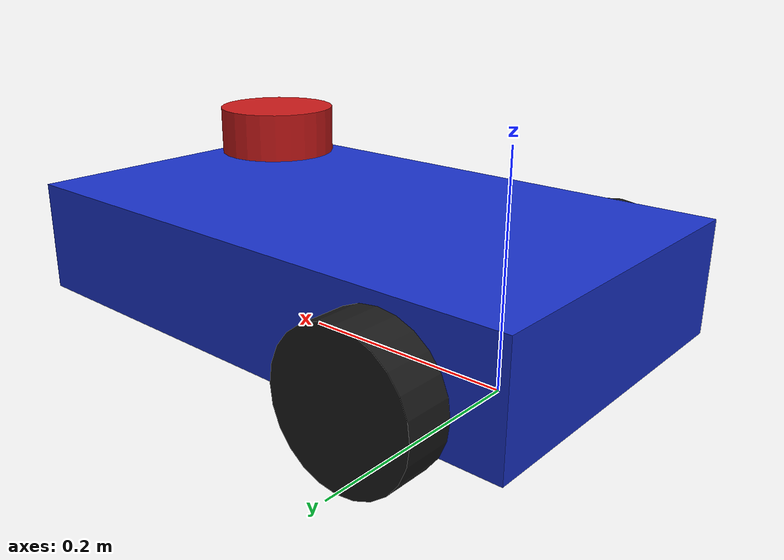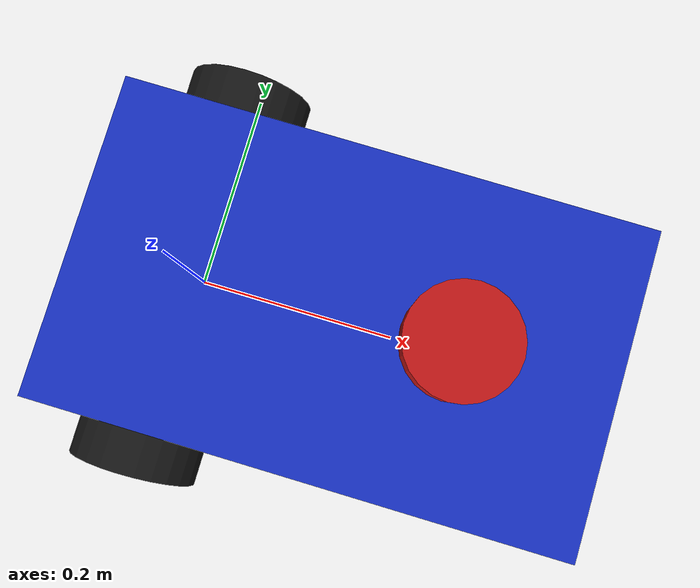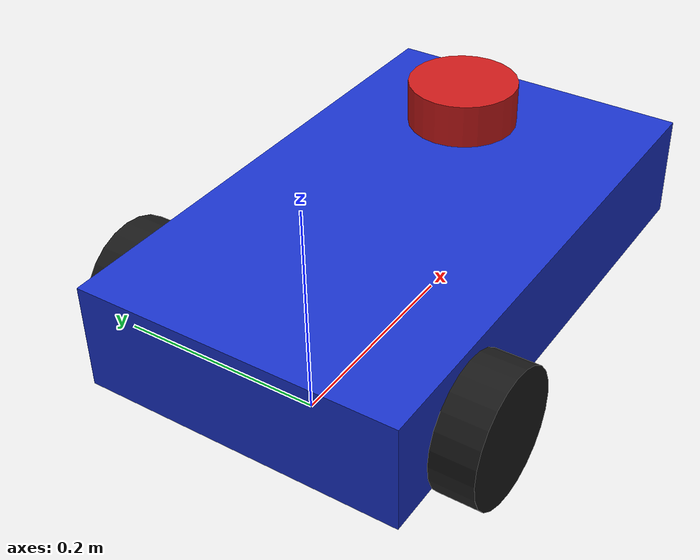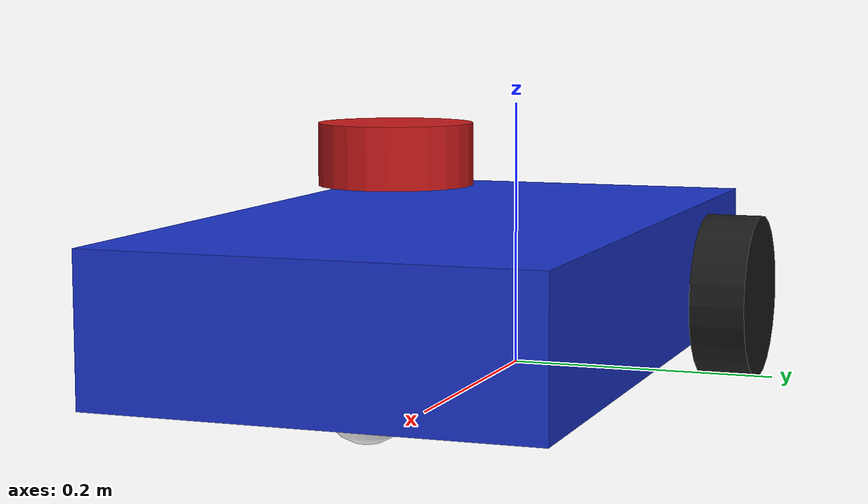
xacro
<?xml version="1.0"?>
<robot xmlns:xacro="http://www.ros.org/wiki/xacro" name="my_robot">

    <!-- RViz2 için Renk Tanımları -->
    <material name="blue"><color rgba="0.1 0.2 0.8 1"/></material>
    <material name="black"><color rgba="0.1 0.1 0.1 1"/></material>
    <material name="white"><color rgba="0.9 0.9 0.9 1"/></material>

    <!-- 1. KÖK NOKTA: base_footprint = tekerlek aksının orta noktasının yer izdüşümü -->
    <link name="base_footprint"/>

    <!-- base_link, aksın 0.15 m ÖNÜNDE ve 0.08 m yukarıda (aks yüksekliği = tekerlek yarıçapı 0.06) -->
    <joint name="base_joint" type="fixed">
        <parent link="base_footprint"/>
        <child link="base_link"/>
        <origin xyz="0.15 0 0.08" rpy="0 0 0"/>
    </joint>

    <!-- 2. ANA GÖVDE (Şasi) -->
    <link name="base_link">
        <visual>
            <geometry><box size="0.5 0.3 0.1"/></geometry>
            <material name="blue"/>
        </visual>
        <collision>
            <geometry><box size="0.5 0.3 0.1"/></geometry>
        </collision>
        <inertial>
            <mass value="2.0"/>
            <inertia ixx="0.02" ixy="0" ixz="0" iyy="0.04" iyz="0" izz="0.05"/>
        </inertial>
    </link>

    <!-- 3. TEKERLEK MAKROSU -->
    <xacro:macro name="drive_wheel" params="prefix y_reflect">
        <link name="${prefix}_wheel">
            <visual>
                <origin xyz="0 0 0" rpy="${-pi/2} 0 0"/>
                <geometry><cylinder radius="0.06" length="0.04"/></geometry>
                <material name="black"/>
            </visual>
            <collision>
                <origin xyz="0 0 0" rpy="${-pi/2} 0 0"/>
                <geometry><cylinder radius="0.06" length="0.04"/></geometry>
            </collision>
            <inertial>
                <origin xyz="0 0 0" rpy="${-pi/2} 0 0"/>
                <mass value="0.3"/>
                <inertia ixx="0.0003" ixy="0" ixz="0" iyy="0.0003" iyz="0" izz="0.0005"/>
            </inertial>
        </link>

        <!-- base_link'e göre x=-0.15 => base_footprint'e göre x=0 (aks tam footprint üzerinde) -->
        <joint name="${prefix}_wheel_joint" type="continuous">
            <parent link="base_link"/>
            <child link="${prefix}_wheel"/>
            <origin xyz="-0.15 ${y_reflect * 0.17} -0.02" rpy="0 0 0"/>
            <axis xyz="0 1 0"/>
        </joint>

        <gazebo reference="${prefix}_wheel">
            <material>Gazebo/Black</material>
            <mu1>1.0</mu1>
            <mu2>1.0</mu2>
            <kp>1000000.0</kp>
            <kd>100.0</kd>
            <minDepth>0.001</minDepth>
            <maxVel>1.0</maxVel>
        </gazebo>
    </xacro:macro>

    <xacro:drive_wheel prefix="left" y_reflect="1"/>
    <xacro:drive_wheel prefix="right" y_reflect="-1"/>

    <!-- 4. ÖN DENGE TEKERLEĞİ (Caster) -->
    <link name="caster_wheel">
        <visual>
            <geometry><sphere radius="0.03"/></geometry>
            <material name="white"/>
        </visual>
        <collision>
            <geometry><sphere radius="0.03"/></geometry>
        </collision>
        <inertial>
            <mass value="0.1"/>
            <inertia ixx="0.0001" ixy="0" ixz="0" iyy="0.0001" iyz="0" izz="0.0001"/>
        </inertial>
    </link>

    <joint name="caster_wheel_joint" type="fixed">
        <parent link="base_link"/>
        <child link="caster_wheel"/>
        <origin xyz="0.15 0 -0.05" rpy="0 0 0"/>
    </joint>

    <!-- 5. GAZEBO RENK VE FİZİK AYARLARI -->
    <gazebo reference="base_link">
        <material>Gazebo/Blue</material>
    </gazebo>

    <gazebo reference="caster_wheel">
        <material>Gazebo/White</material>
        <mu1>0.001</mu1>
        <mu2>0.001</mu2>
        <kp>1000000.0</kp>
        <kd>100.0</kd>
        <minDepth>0.001</minDepth>
    </gazebo>

    <!-- 6. GAZEBO DİFERANSİYEL SÜRÜŞ VE JOINT STATE EKLENTİLERİ -->
    <gazebo>
        <plugin name="diff_drive" filename="libgazebo_ros_diff_drive.so">
            <update_rate>50</update_rate>
            <left_joint>left_wheel_joint</left_joint>
            <right_joint>right_wheel_joint</right_joint>

            <wheel_separation>0.34</wheel_separation>
            <wheel_diameter>0.12</wheel_diameter>

            <!-- 10 rad/s² * 0.06 m = 0.6 m/s²: Nav2 limitlerinden (0.5 m/s²) gevşek
                 olmalı, yoksa kontrolcü robotun yapamayacağı yörüngeler planlar -->
            <max_wheel_torque>10</max_wheel_torque>
            <max_wheel_acceleration>10.0</max_wheel_acceleration>

            <!-- 0 = tekerlek encoder'ı (gerçek robottaki gibi), 1 = Gazebo gerçek konumu -->
            <odometry_source>0</odometry_source>
            <odometry_frame>odom</odometry_frame>
            <robot_base_frame>base_footprint</robot_base_frame>
            <publish_odom>true</publish_odom>
            <publish_odom_tf>true</publish_odom_tf>
            <publish_wheel_tf>false</publish_wheel_tf>
        </plugin>

        <!-- Sadece simülasyon: gerçek konum (test/değerlendirme için), /ground_truth -->
        <plugin name="ground_truth" filename="libgazebo_ros_p3d.so">
            <ros>
                <remapping>odom:=ground_truth</remapping>
            </ros>
            <body_name>base_footprint</body_name>
            <frame_name>world</frame_name>
            <update_rate>20</update_rate>
        </plugin>

        <plugin name="gazebo_ros_joint_state_publisher" filename="libgazebo_ros_joint_state_publisher.so">
            <update_rate>50</update_rate>
            <joint_name>left_wheel_joint</joint_name>
            <joint_name>right_wheel_joint</joint_name>
        </plugin>
    </gazebo>

    <!-- LIDAR Sensör Modülünü Dahil Et -->
    <xacro:include filename="$(find my_robot_description)/urdf/lidar.xacro" />

</robot>

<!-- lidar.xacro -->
<robot xmlns:xacro="http://www.ros.org/wiki/xacro">

    <material name="red">
        <color rgba="0.8 0.1 0.1 1"/>
    </material>

    <!-- 1. LIDAR FİZİKSEL GÖVDESİ (Kırmızı Silindir) -->
    <link name="laser_frame">
        <visual>
            <geometry>
                <cylinder radius="0.05" length="0.04"/>
            </geometry>
            <material name="red"/>
        </visual>
        <collision>
            <geometry>
                <cylinder radius="0.05" length="0.04"/>
            </geometry>
        </collision>
        <inertial>
            <mass value="0.1"/>
            <inertia ixx="0.0001" ixy="0" ixz="0" iyy="0.0001" iyz="0" izz="0.0001"/>
        </inertial>
    </link>

    <!-- LIDAR'ı robotun ana gövdesinin (base_link) üst-ön kısmına sabitliyoruz -->
    <joint name="laser_joint" type="fixed">
        <parent link="base_link"/>
        <child link="laser_frame"/>
        <!-- Şasi üstü base_link'ten 0.05 m yukarıda; 0.10 m'de ışınlar şasiye çarpmaz -->
        <origin xyz="0.1 0 0.10" rpy="0 0 0"/>
    </joint>

    <!-- 2. GAZEBO RAY (LIDAR) SENSÖR EKLENTİSİ -->
    <gazebo reference="laser_frame">
        <material>Gazebo/Red</material>

        <sensor name="laser" type="ray">
            <pose> 0 0 0 0 0 0 </pose>
            <!-- Gazebo'da mavi lazer ışınlarını gözle görmek için true yapıyoruz -->
            <visualize>true</visualize>
            <!-- Saniyede 10 kez tarama yap (10 Hz) -->
            <update_rate>10</update_rate>
            <ray>
                <scan>
                    <horizontal>
                        <!-- 360 ışın, tam 1° aralık: -pi ... +pi-1° (uçlar üst üste binmez) -->
                        <samples>360</samples>
                        <min_angle>${-pi}</min_angle>
                        <max_angle>${pi - pi/180}</max_angle>
                    </horizontal>
                </scan>
                <range>
                    <!-- 12 cm'den yakın (kendi gövdesi) ve 8 metreden uzak nesneleri yoksay -->
                    <min>0.12</min>
                    <max>8.0</max>
                </range>
                <noise>
                    <type>gaussian</type>
                    <mean>0.0</mean>
                    <stddev>0.01</stddev>
                </noise>
            </ray>

            <!-- Veriyi ROS 2'deki /scan konusuna LaserScan mesajı olarak basan eklenti -->
            <plugin name="laser_controller" filename="libgazebo_ros_ray_sensor.so">
                <ros>
                    <remapping>~/out:=scan</remapping>
                </ros>
                <output_type>sensor_msgs/LaserScan</output_type>
                <frame_name>laser_frame</frame_name>
            </plugin>
        </sensor>
    </gazebo>
</robot>
